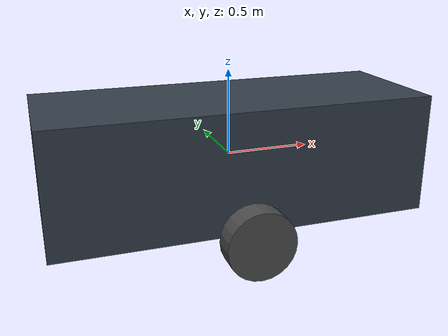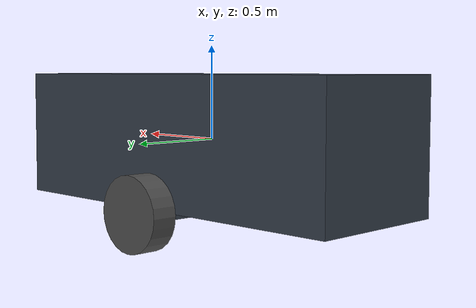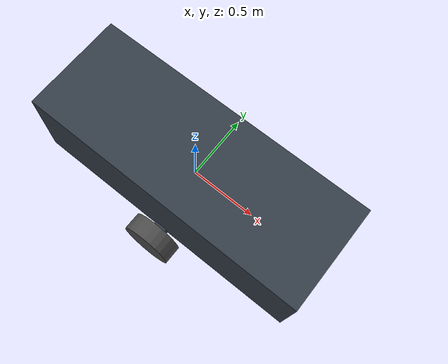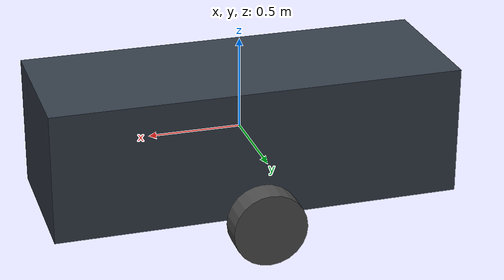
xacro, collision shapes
<?xml version="1.0" ?>
<robot name="dual_motion_robot" xmlns:xacro="http://www.ros.org/wiki/xacro">

  <xacro:include filename="$(find robot_description)/urdf/dual_motion_robot_drive/materials.xacro" />
  <xacro:include filename="$(find robot_description)/urdf/dual_motion_robot_drive/dual_motion_robot.gazebo" />
  <xacro:include filename="$(find robot_description)/urdf/dual_motion_robot_drive/macros.xacro" />
  <xacro:include filename="$(find robot_description)/urdf/dual_motion_robot_drive/dual_motion_robot_transmision.xacro" />

  <link name="link_chassis">
    <!-- pose and inertial -->
    <inertial>
      <!--mass value="118.1" /-->
      <mass value="1.1" />

      <origin rpy="0 0 0" xyz="0 0 0"/>
      <inertia ixx="6.4387768" ixy="-0.0007626" ixz="-0.7441046"
          iyy="46.1852065" iyz="-0.0011013"
          izz="48.0676973" />
    </inertial>
    <!-- body -->
    <collision name="collision_chassis">
      <geometry>
        <box size="2.2 0.8 0.7"/>
      </geometry>
    </collision>
    <visual>
      <origin rpy="0 0 0" xyz="0 0 0"/>
      <geometry>
        <mesh filename="package://robot_description/mesh/for_VREP/Body_with_wheel_plate.stl" scale="0.001 0.001 0.001"/>
        <!--box size="2.2 0.8 0.7"/-->
      </geometry>
      <material name="blue"/>
    </visual>
  </link>

  <link name="wheel_link">
    <!-- pose and inertial -->
    <inertial>
      <mass value="1"/>
      <origin rpy="0 0 0" xyz="0 0 -0.35"/>
      <inertia ixx="0.01" ixy="0" ixz="0" iyy="0.01" iyz="0" izz="0.01"/>
    </inertial>
    <!-- body -->
    <collision name="collision_wheel_link">
      <origin rpy="0 0 0" xyz="0 0 -0.35"/>
      <geometry>
        <box size="0.1 1 0.1"/>
      </geometry>
    </collision>
    <visual>
      <origin rpy="0 0 0" xyz="0 0 -0.35"/>
      <geometry>
        <box size="0.1 1 0.1"/>
      </geometry>
      <material name="blue"/>
    </visual>
  </link>

  <xacro:link_wheel name="link_left_wheel" />
  <xacro:joint_wheel name="wheel_L_joint" child="link_left_wheel" origin_xyz="0 0.51 -0.35" origin_rpy="0 0 0" />
  <!--xacro:SimpleTransmissionEffort n="0" joint="wheel_L_joint" /-->

  <xacro:link_wheel name="link_right_wheel" />
  <xacro:joint_wheel name="wheel_R_joint" child="link_right_wheel" origin_xyz="0 -0.51 -0.35" origin_rpy="0 0 0" />
  <!--xacro:SimpleTransmissionEffort n="1" joint="wheel_R_joint" /-->

  <xacro:base_joint name="chassis_pos_joint" child="link_chassis" origin_xyz="0 0 0.0" />
  <xacro:SimpleTransmissionEffort n="2" joint="chassis_pos_joint" />

</robot>

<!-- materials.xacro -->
<robot xmlns:xacro="http://www.ros.org/wiki/xacro">
  <material name="black">
    <color rgba="0.0 0.0 0.0 1.0"/>
  </material>
  <material name="blue">
    <color rgba="0.203125 0.23828125 0.28515625 1.0"/>
  </material>
  <material name="green">
    <color rgba="0.0 0.8 0.0 1.0"/>
  </material>
  <material name="grey">
    <color rgba="0.2 0.2 0.2 1.0"/>
  </material>
  <material name="orange">
    <color rgba="1.0 0.423529411765 0.0392156862745 1.0"/>
  </material>
  <material name="brown">
    <color rgba="0.870588235294 0.811764705882 0.764705882353 1.0"/>
  </material>
  <material name="red">
    <color rgba="0.80078125 0.12890625 0.1328125 1.0"/>
  </material>
  <material name="white">
    <color rgba="1.0 1.0 1.0 1.0"/>
  </material>
  <material name="darkgreen">
    <color rgba="0 0.3 0 1.0"/>
  </material>
</robot>

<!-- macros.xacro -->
<robot xmlns:xacro="http://www.ros.org/wiki/xacro">
    <xacro:macro name="link_wheel" params="name">
        <link name="${name}">
            <inertial>
              <mass value="3.871" />
              <origin rpy="0 1.5707 1.5707" xyz="0 0 0"/>
              <inertia ixx="0.056425" ixy="0.0" ixz="0.0"
                      iyy="0.094098" iyz="0.0"
                      izz="0.056425" />
            </inertial>

            <collision name="link_right_wheel_collision">
              <origin rpy="0 1.5707 1.5707" xyz="0 0 0"/>
              <geometry>
                <cylinder length="0.14" radius="0.2"/>
              </geometry>
            </collision>

            <visual name="${name}_visual">
              <origin rpy="0 0 0" xyz="0 0 0"/>
              <geometry>
                <mesh filename="package://robot_description/mesh/for_VREP/Wheel.stl" scale="0.001 0.001 0.001"/>
                <!--cylinder length="0.14" radius="0.2"/-->
              </geometry>
            </visual>
        </link>
    </xacro:macro>

    <xacro:macro name="joint_wheel" params="name child origin_xyz origin_rpy">
      <joint name="${name}" type="continuous">
        <origin rpy="${origin_rpy}" xyz="${origin_xyz}"/>
        <child link="${child}"/>
        <parent link="wheel_link"/>
        <axis rpy="0 0 0" xyz="0 1 0"/>
        <limit effort="1000" velocity="100"/>
        <joint_properties damping="1.0" friction="1.0"/>
      </joint>
    </xacro:macro>

    <xacro:macro name="cylinder_inertia" params="mass r l">
      <inertia  ixx="${mass*(3*r*r+l*l)/12}" ixy = "0" ixz = "0"
                iyy="${mass*(3*r*r+l*l)/12}" iyz = "0"
                izz="${mass*(r*r)/2}" />
    </xacro:macro>

    <xacro:macro name="base_joint" params="name child origin_xyz">
      <joint name="${name}" type="prismatic">
        <origin rpy="0 0 0" xyz="${origin_xyz}"/>
        <child link="${child}"/>
        <parent link="wheel_link"/>
        <axis rpy="0 0 0" xyz="1 0 0"/>
        <limit effort="10000" lower="-1" upper="1" velocity="0.1" />
        <joint_properties damping="1.0" friction="1.0"/>
      </joint>
    </xacro:macro>

    <xacro:macro name="cylinder_inertia" params="mass r l">
      <inertia  ixx="${mass*(3*r*r+l*l)/12}" ixy = "0" ixz = "0"
                iyy="${mass*(3*r*r+l*l)/12}" iyz = "0"
                izz="${mass*(r*r)/2}" />
    </xacro:macro>
</robot>
